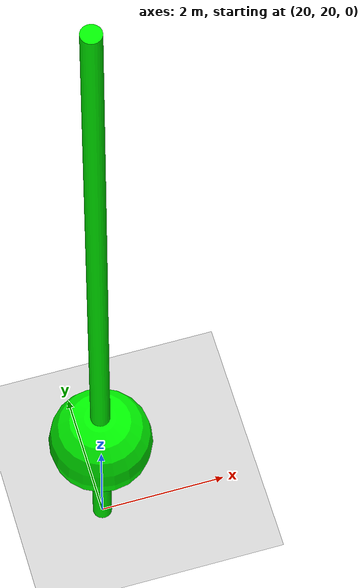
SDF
<?xml version="1.0"?>
<sdf version="1.6">
  <world name="curriculum_stage1_empty">

    <physics type="ode">
      <ode>
        <solver>
          <type>quick</type>
          <iters>50</iters>
          <sor>1.3</sor>
        </solver>
        <constraints>
          <cfm>0.0</cfm>
          <erp>0.2</erp>
          <contact_max_correcting_vel>100</contact_max_correcting_vel>
          <contact_surface_layer>0.001</contact_surface_layer>
        </constraints>
      </ode>
      <real_time_update_rate>250</real_time_update_rate>
      <max_step_size>0.004</max_step_size>
    </physics>

    <light name="sun" type="directional">
      <cast_shadows>false</cast_shadows>
      <pose>0 0 50 0 0 0</pose>
      <diffuse>0.8 0.8 0.8 1</diffuse>
      <specular>0.1 0.1 0.1 1</specular>
      <attenuation>
        <range>120</range>
        <constant>0.9</constant>
        <linear>0.01</linear>
        <quadratic>0.001</quadratic>
      </attenuation>
      <direction>-0.5 0.1 -0.9</direction>
    </light>

    <scene>
      <ambient>0.6 0.6 0.6 1</ambient>
      <background>0.75 0.8 0.85 1</background>
      <shadows>false</shadows>
      <grid>false</grid>
      <origin_visual>false</origin_visual>
    </scene>

    <!-- Ground plane (Standard) -->
    <include>
      <uri>model://ground_plane</uri>
    </include>

    <!-- NO BOUNDARY WALLS - OPEN WORLD -->

    <!-- NO OBSTACLES IN STAGE 1 -->

    <!-- Training target marker (green sphere) -->
    <model name="training_goal">
      <static>true</static>
      <pose>20 20 2.5 0 0 0</pose>
      <link name="link">
        <collision name="collision">
          <geometry>
            <sphere><radius>0.8</radius></sphere>
          </geometry>
        </collision>
        <visual name="visual">
          <geometry>
            <sphere><radius>0.8</radius></sphere>
          </geometry>
          <material>
            <ambient>0 1 0 1</ambient>
            <diffuse>0 1 0 1</diffuse>
            <emissive>0 0.5 0 1</emissive>
          </material>
        </visual>
      </link>
    </model>

    <!-- Goal marker pole for better visibility -->
    <model name="goal_pole">
      <static>true</static>
      <pose>20 20 7 0 0 0</pose>
      <link name="link">
        <visual name="pole_visual">
          <geometry>
            <cylinder><radius>0.15</radius><length>14</length></cylinder>
          </geometry>
          <material>
            <ambient>0 1 0 1</ambient>
            <diffuse>0 1 0 1</diffuse>
          </material>
        </visual>
      </link>
    </model>

    <gui fullscreen="0">
      <camera name="user_camera">
        <pose>-35 -35 20 0 0.5 0.8</pose>
        <view_controller>orbit</view_controller>
      </camera>
    </gui>

  </world>
</sdf>
